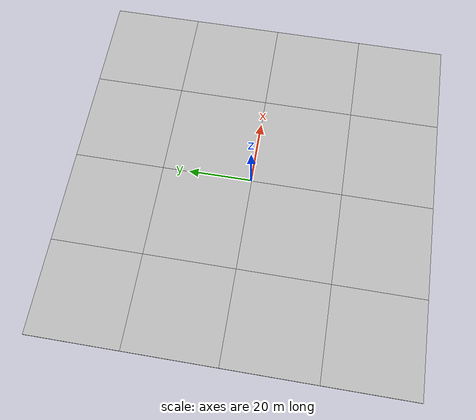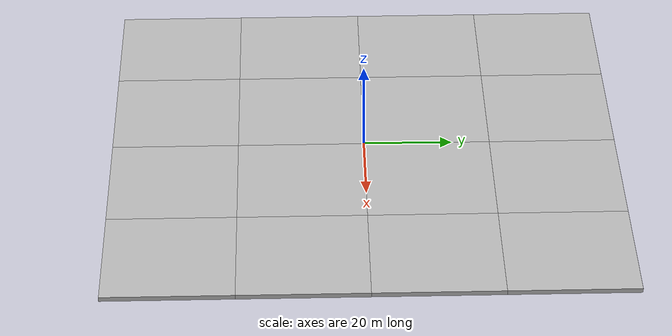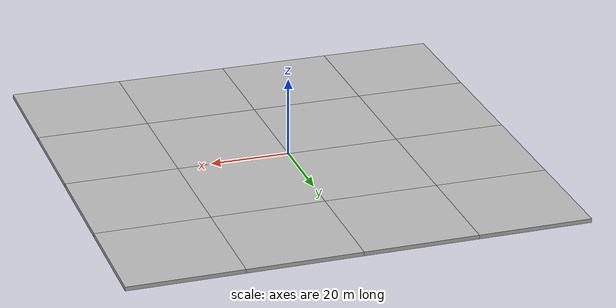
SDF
<sdf version="1.6">
 <world name="default"><include><uri>model://riseholme_satellite</uri></include></world>
</sdf>
